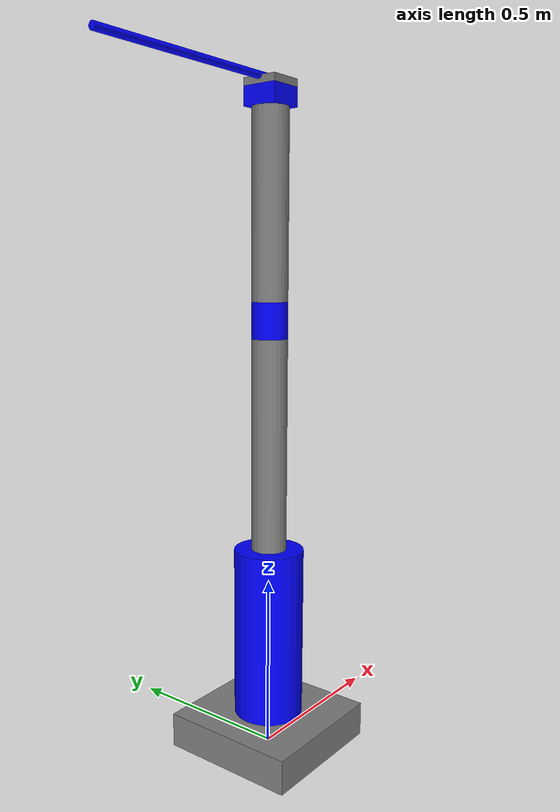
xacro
<?xml version="1.0"?>
<robot xmlns:xacro="http://www.ros.org/wiki/xacro" name="double_pendulum">
    <xacro:arg name="initial_positions_file" default="initial_positions.yaml" />

    <!-- Import double_pendulum urdf file -->
    <xacro:include filename="$(find arm_description)/urdf/double_pendulum.urdf.xacro" />

    <!-- Import control_xacro -->
    <xacro:include filename="double_pendulum.ros2_control.xacro" />

    <xacro:double_pendulum_ros2_control name="FakeSystem" initial_positions_file="$(arg initial_positions_file)"/>

</robot>

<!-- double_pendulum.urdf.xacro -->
<robot name="double_pendulum" xmlns:xacro="http://www.ros.org/wiki/xacro">

    <xacro:include filename="common_properties.xacro" />
    <xacro:include filename="arm.xacro" />
    <xacro:include filename="gripper.xacro" />
    <xacro:include filename="double_pendulum.ros2_control.xacro"/>

    <joint name="pendulum_joint_1" type="fixed">
        <parent link="tool_link"/>
        <child link="pendulum_link_1"/>
        <origin rpy="0 1.5707 3.14159" xyz="0 0 0"/>
    </joint>

    <gazebo>
        <plugin name="gz_ros2_control::GazeboSimROS2ControlPlugin"
                filename="libgz_ros2_control-system">
            <robot_param>robot_description</robot_param>
            <robot_param_node>robot_state_publisher</robot_param_node>
            <parameters>$(find double_pendulum_bringup)/config/ros2_controllers.yaml</parameters>
        </plugin>
        <plugin filename="libreset_joints_plugin.so"
                name="double_pendulum_plugins::ResetJointsPlugin"/>
    </gazebo>

</robot>

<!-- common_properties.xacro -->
<robot xmlns:xacro="http://www.ros.org/wiki/xacro">

    <material name="gray">
        <color rgba="0.5 0.5 0.5 1"/>
    </material>

    <material name="blue">
        <color rgba="0 0 1 1"/>
    </material>

    <material name="green_dark">
        <color rgba="0 0.4 0 1"/>
    </material>

    <material name="green_light">
        <color rgba="0 0.6 0 1"/>
    </material>

    <xacro:macro name="box_inertia" params="m x y z o_xyz o_rpy">
        <inertial>
            <mass value="${m}"/>
            <origin xyz="${o_xyz}" rpy="${o_rpy}" />
            <inertia ixx="${ (m/12) * (y*y + z*z) }" ixy="0" ixz="0"
                     iyy="${ (m/12) * (x*x + z*z) }" iyz="0"
                     izz="${ (m/12) * (y*y + x * x) }" />
        </inertial>
    </xacro:macro>

    <xacro:macro name="cylinder_z_inertia" params="m r h o_xyz o_rpy">
        <inertial>
            <mass value="${m}"/>
            <origin xyz="${o_xyz}" rpy="${o_rpy}" />
            <inertia ixx="${ (m / 12) * (3*r*r + h*h) }" ixy="0" ixz="0"
                     iyy="${ (m / 12) * (3*r*r + h*h) }" iyz="0"
                     izz="${ (m / 2) * (r*r) }" />
        </inertial>
    </xacro:macro>

</robot>

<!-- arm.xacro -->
<robot xmlns:xacro="http://www.ros.org/wiki/xacro">

    <link name="world"/>

    <link name="base_link">
        <visual>
            <geometry>
                <box size="0.4 0.4 0.1"/>
            </geometry>
            <origin xyz="0 0 0.05" rpy="0 0 0"/>
            <material name="gray"/>
        </visual>
        <collision>
            <geometry>
                <box size="0.4 0.4 0.1"/>
            </geometry>
            <origin xyz="0 0 0.05" rpy="0 0 0"/>
        </collision>
        <xacro:box_inertia m="10.0" x="0.4" y="0.4" z="0.1"
                       o_xyz="0 0 0.05" o_rpy="0 0 0"/>
    </link>

    <link name="shoulder_link">
        <visual>
            <geometry>
                <cylinder length="0.5" radius="0.1"/>
            </geometry>
            <origin xyz="0 0 .25" rpy="0 0 0"/>
            <material name="blue"/>
        </visual>
        <collision>
            <geometry>
                <box size="0.2 0.2 0.5"/>
            </geometry>
            <origin xyz="0 0 0.25" rpy="0 0 0"/>
        </collision>
        <xacro:cylinder_z_inertia m="5.0" r="0.1" h="0.5"
                                  o_xyz="0 0 0.25" o_rpy="0 0 0"/>
    </link>

    <link name="arm_link">
        <visual>
            <geometry>
                <cylinder length="0.6" radius="0.05"/>
            </geometry>
            <origin xyz="0 0 0.3" rpy="0 0 0"/>
            <material name="gray"/>
        </visual>
        <collision>
            <geometry>
                <box size="0.1 0.1 0.6"/>
            </geometry>
            <origin xyz="0 0 0.3" rpy="0 0 0"/>
        </collision>
        <xacro:cylinder_z_inertia m="3.0" r="0.05" h="0.6"
                                  o_xyz="0 0 0.3" o_rpy="0 0 0"/>
    </link>

    <link name="elbow_link">
        <visual>
            <geometry>
                <cylinder length="0.1" radius="0.05"/>
            </geometry>
            <origin xyz="0 0 0.05" rpy="0 0 0"/>
            <material name="blue"/>
        </visual>
        <collision>
            <geometry>
                <box size=".1 .1 .1"/>
            </geometry>
            <origin xyz="0 0 0.05" rpy="0 0 0"/>
        </collision>
        <xacro:cylinder_z_inertia m="1.0" r="0.05" h="0.1"
                                  o_xyz="0 0 0.05" o_rpy="0 0 0"/>
    </link>

    <link name="forearm_link">
        <visual>
            <geometry>
                <cylinder length="0.5" radius="0.05"/>
            </geometry>
            <origin xyz="0 0 0.25" rpy="0 0 0"/>
            <material name="gray"/>
        </visual>
        <collision>
            <geometry>
                <box size=".1 .1 .5"/>
            </geometry>
            <origin xyz="0 0 0.25" rpy="0 0 0"/>
        </collision>
        <xacro:cylinder_z_inertia m="3.0" r="0.05" h="0.5"
                                  o_xyz="0 0 0.25" o_rpy="0 0 0"/>
    </link>

    <link name="wrist_link">
        <visual>
            <geometry>
                <box size="0.1 0.1 0.05"/>
            </geometry>
            <origin xyz="0 0 0.025" rpy="0 0 0"/>
            <material name="blue"/>
        </visual>
        <collision>
            <geometry>
                <box size="0.1 0.1 0.05"/>
            </geometry>
            <origin xyz="0 0 0.025" rpy="0 0 0"/>
        </collision>
        <xacro:box_inertia m="1.0" x="0.1" y="0.1" z="0.05"
                           o_xyz="0 0 0.025" o_rpy="0 0 0" />
    </link>

    <link name="hand_link">
        <visual>
            <geometry>
                <box size="0.1 0.1 0.02"/>
            </geometry>
            <origin xyz="0 0 0.01" rpy="0 0 0"/>
            <material name="gray"/>
        </visual>
        <collision>
            <geometry>
                <box size="0.1 0.1 0.02"/>
            </geometry>
            <origin xyz="0 0 0.01" rpy="0 0 0"/>
        </collision>
        <xacro:box_inertia m="1.0" x="0.1" y="0.1" z="0.02"
                           o_xyz="0 0 0.01" o_rpy="0 0 0" />
    </link>

    <link name="tool_link">
    <xacro:box_inertia m="0.01" x="0.01" y="0.01" z="0.01"
                       o_xyz="0 0 0.00" o_rpy="0 0 0"/>
    </link>

    <joint name="world_to_base" type="fixed">
        <parent link="world"/>
        <child link="base_link"/>
        <origin xyz="0 0 0" rpy="0 0 0"/>
    </joint>

    <joint name="joint1" type="revolute">
        <parent link="base_link"/>
        <child link="shoulder_link"/>
        <origin xyz="0 0 .1" rpy="0 0 0"/>
        <axis xyz="0 0 1" />
        <limit effort="1000.0" velocity="30.0" lower="-3.14" upper="3.14"/>
    </joint>

    <joint name="joint2" type="revolute">
        <parent link="shoulder_link"/>
        <child link="arm_link"/>
        <origin xyz="0 0 0.5" rpy="0 0 0"/>
        <axis xyz="0 1 0"/>
        <limit effort="1000.0" velocity="30.0" lower="-1.58" upper="1.58"/>
    </joint>

    <joint name="joint3" type="revolute">
        <parent link="arm_link"/>
        <child link="elbow_link"/>
        <origin xyz="0 0 .6" rpy="0 0 0"/>
        <axis xyz="0 1 0"/>
        <limit effort="1000.0" velocity="30.0" lower="-1.58" upper="1.58"/>
    </joint>

    <joint name="joint4" type="revolute">
        <parent link="elbow_link"/>
        <child link="forearm_link"/>
        <origin xyz="0 0 .1" rpy="0 0 0"/>
        <axis xyz="0 0 1"/>
        <limit effort="1000.0" velocity="30.0" lower="-3.14" upper="3.14"/>
    </joint>

    <joint name="joint5" type="revolute">
        <parent link="forearm_link"/>
        <child link="wrist_link"/>
        <origin xyz="0 0 .5" rpy="0 0 0"/>
        <axis xyz="0 1 0"/>
        <limit effort="1000.0" velocity="30.0" lower="-3.14" upper="3.14"/>
    </joint>

    <joint name="joint6" type="revolute">
        <parent link="wrist_link"/>
        <child link="hand_link"/>
        <origin xyz="0 0 .05" rpy="0 0 0"/>
        <axis xyz="0 0 1"/>
        <limit effort="1000.0" lower="-3.14" upper="3.14" velocity="30.0"/>
    </joint>

    <joint name="hand_tool_joint" type="fixed">
        <parent link="hand_link"/>
        <child link="tool_link"/>
        <origin xyz="0 0 .02" rpy="0 0 0"/>
    </joint>

</robot>

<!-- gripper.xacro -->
<robot xmlns:xacro="http://www.ros.org/wiki/xacro">

    <link name="pendulum_link_1">
        <visual>
            <geometry>
                <cylinder radius="0.01" length="0.3"/>
            </geometry>
            <material name="blue"/>
            <origin xyz="0 0 0.15" rpy="0 0 0"/>
        </visual>
        <collision>
            <geometry>
                <cylinder radius="0.01" length="0.3"/>
            </geometry>
            <material name="blue"/>
            <origin xyz="0 0 0.15" rpy="0 0 0"/>
        </collision>
        <xacro:cylinder_z_inertia m="0.15" r="0.01" h="0.3"
                                  o_xyz="0 0 0.15" o_rpy="0 0 0"/>
    </link>

    <link name="pendulum_link_2">
        <visual>
            <geometry>
                <cylinder radius="0.01" length="0.3"/>
            </geometry>
            <material name="blue"/>
            <origin xyz="0 0 0.15" rpy="0 0 0"/>
        </visual>
        <collision>
            <geometry>
                <cylinder radius="0.01" length="0.3"/>
            </geometry>
            <material name="gray"/>
            <origin xyz="0 0 0.15" rpy="0 0 0"/>
        </collision>
        <xacro:cylinder_z_inertia m="0.15" r="0.01" h="0.3"
                                  o_xyz="0 0 0.15" o_rpy="0 0 0"/>
    </link>

    <joint name="pendulum_joint_2" type="continuous">
        <parent link="pendulum_link_1"/>
        <child link="pendulum_link_2"/>
        <origin xyz="0 0 0.3" rpy="0 0 3.14159"/>
        <axis xyz="1 0 0"/>
        <limit effort="1000.0" velocity="10.0"/>
        <dynamics damping="0.0001" friction="0.0"/>
    </joint>

</robot>
